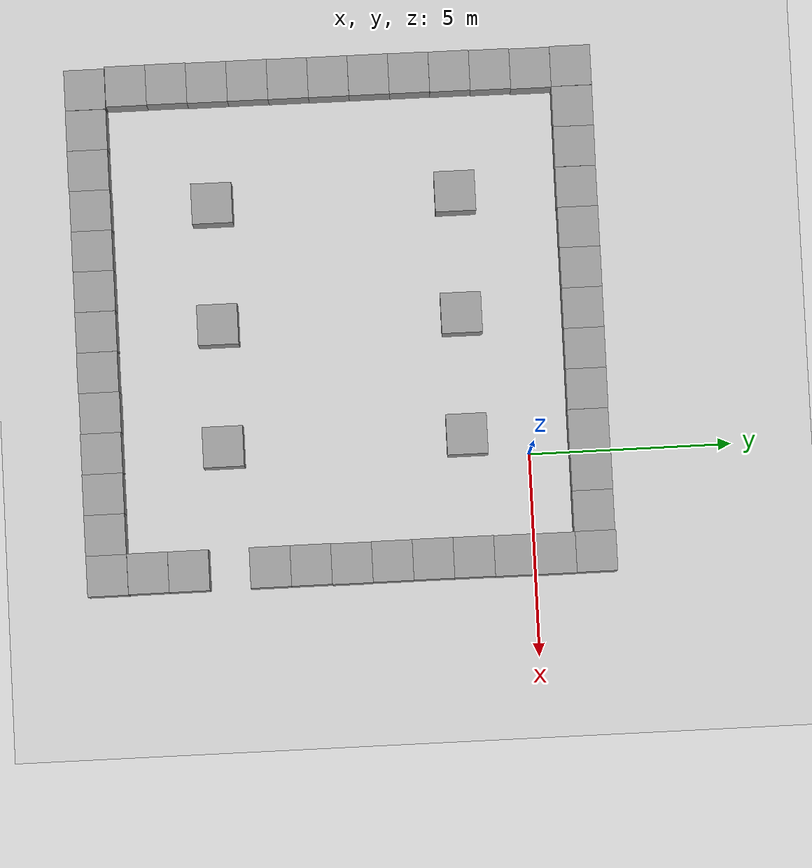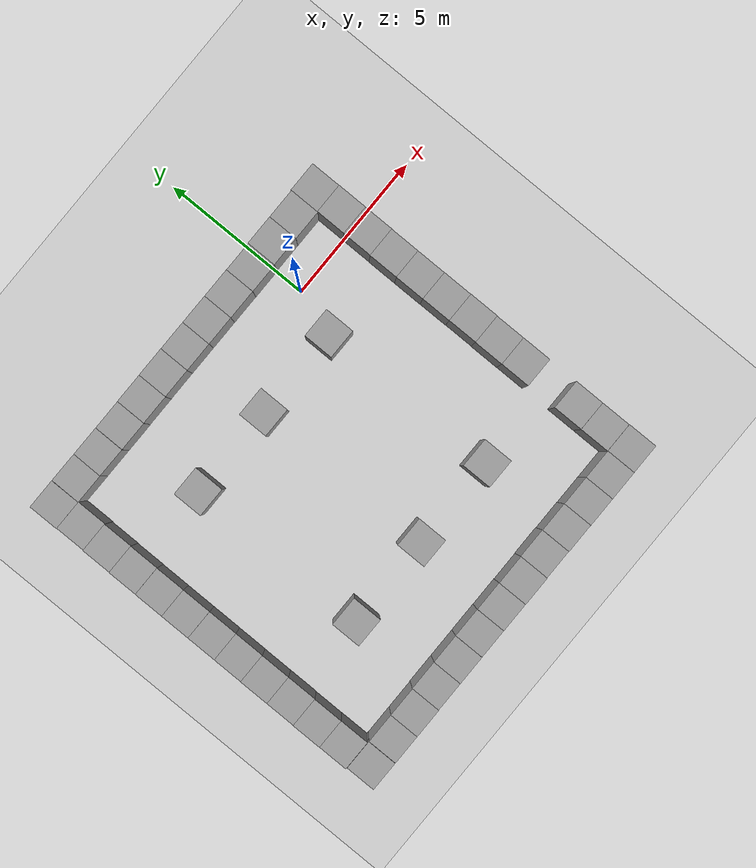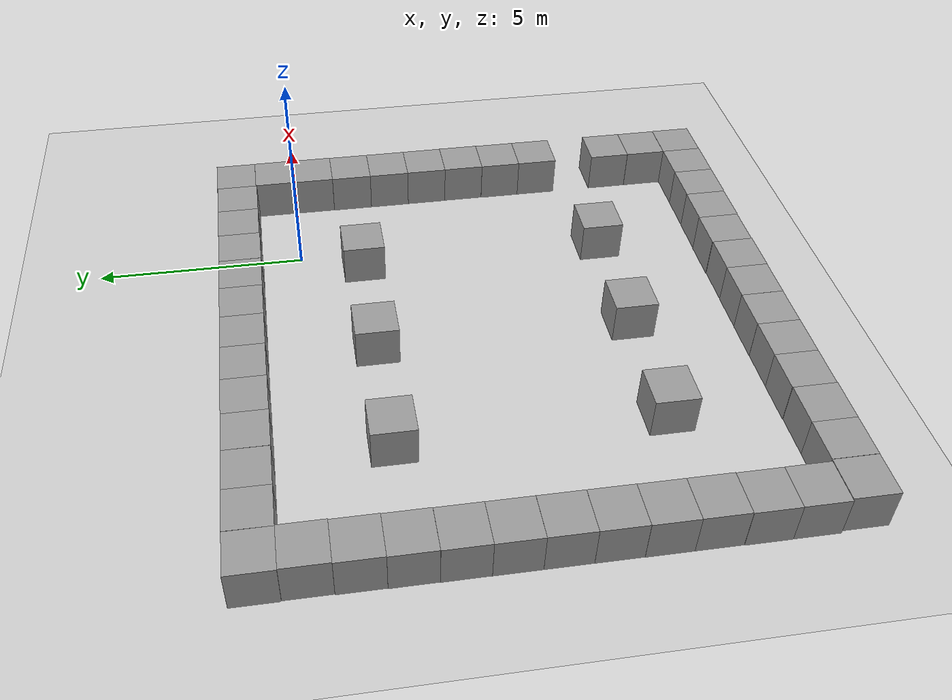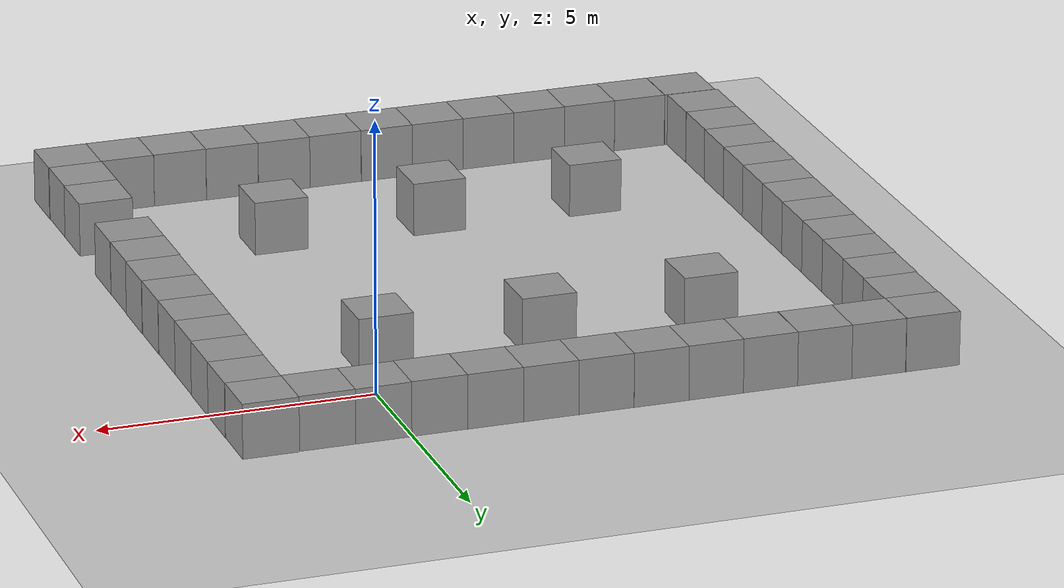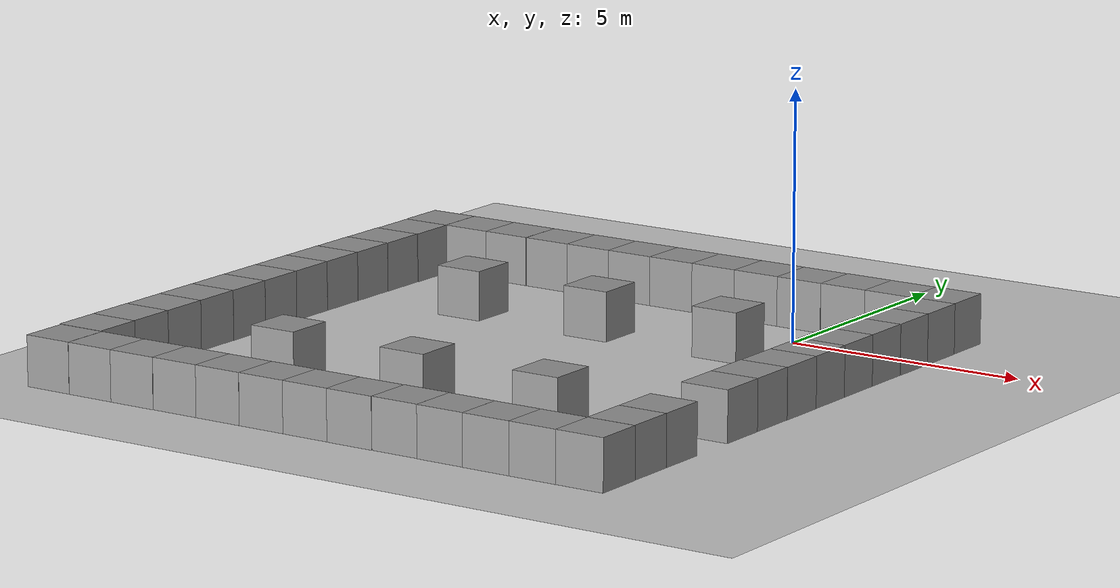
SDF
<sdf version="1.6">
 <world name="default">
  <light name="sun" type="directional">
   <pose>0 0 10 0 -0 0</pose>
   <diffuse>0.8 0.8 0.8 1</diffuse>
   <specular>0.1 0.1 0.1 1</specular>
   <attenuation>
    <range>1000</range>
    <constant>0.9</constant>
    <linear>0.01</linear>
    <quadratic>0.001</quadratic>
   </attenuation>
   <direction>-0.5 0.5 -1</direction>
  </light>
  <model name="ground_plane">
   <static>1</static>
   <link name="link">
    <collision name="collision">
     <geometry><plane><normal>0 0 1</normal><size>100 100</size></plane></geometry>
     <surface><friction><ode><mu>100</mu><mu2>50</mu2></ode></friction></surface>
    </collision>
    <visual name="visual">
     <cast_shadows>0</cast_shadows>
     <geometry><plane><normal>0 0 1</normal><size>100 100</size></plane></geometry>
     <material>
      <script><uri>file://media/materials/scripts/gazebo.material</uri><name>Gazebo/Grey</name></script>
     </material>
    </visual>
   </link>
  </model>
  <gravity>0 0 -9.8</gravity>
  <magnetic_field>6e-06 2.3e-05 -4.2e-05</magnetic_field>
  <atmosphere type="adiabatic"/>
  <physics name="default_physics" default="0" type="ode">
   <max_step_size>0.001</max_step_size>
   <real_time_factor>1</real_time_factor>
   <real_time_update_rate>1000</real_time_update_rate>
  </physics>
  <scene><ambient>0.4 0.4 0.4 1</ambient><background>0.7 0.7 0.7 1</background><shadows>1</shadows></scene>
  <spherical_coordinates>
   <surface_model>EARTH_WGS84</surface_model>
   <latitude_deg>0</latitude_deg>
   <longitude_deg>0</longitude_deg>
   <elevation>0</elevation>
   <heading_deg>0</heading_deg>
  </spherical_coordinates>
  <model name="unit_box_0_3">
   <pose>-0.485013 1.46415 0.499995 0 -9e-06 -0.000435</pose>
   <link name="link">
    <inertial>
     <mass>1</mass>
     <inertia>
      <ixx>0.166667</ixx>
      <ixy>0</ixy>
      <ixz>0</ixz>
      <iyy>0.166667</iyy>
      <iyz>0</iyz>
      <izz>0.166667</izz>
     </inertia>
    </inertial>
    <collision name="collision"><geometry><box><size>1 1 1</size></box></geometry></collision>
    <visual name="visual">
     <geometry><box><size>1 1 1</size></box></geometry>
     <material>
      <script><name>Gazebo/Grey</name><uri>file://media/materials/scripts/gazebo.material</uri></script>
     </material>
    </visual>
   </link>
  </model>
  <model name="unit_box_0_4">
   <pose>0.51501 1.47742 0.5 0 0 -0.000414</pose>
   <link name="link">
    <inertial>
     <mass>1</mass>
     <inertia>
      <ixx>0.166667</ixx>
      <ixy>0</ixy>
      <ixz>0</ixz>
      <iyy>0.166667</iyy>
      <iyz>0</iyz>
      <izz>0.166667</izz>
     </inertia>
    </inertial>
    <collision name="collision"><geometry><box><size>1 1 1</size></box></geometry></collision>
    <visual name="visual">
     <geometry><box><size>1 1 1</size></box></geometry>
     <material>
      <script><name>Gazebo/Grey</name><uri>file://media/materials/scripts/gazebo.material</uri></script>
     </material>
    </visual>
   </link>
  </model>
  <model name="unit_box_0_5">
   <pose>1.51501 1.47529 0.499995 1e-05 -0 -0.000415</pose>
   <link name="link">
    <inertial>
     <mass>1</mass>
     <inertia>
      <ixx>0.166667</ixx>
      <ixy>0</ixy>
      <ixz>0</ixz>
      <iyy>0.166667</iyy>
      <iyz>0</iyz>
      <izz>0.166667</izz>
     </inertia>
    </inertial>
    <collision name="collision"><geometry><box><size>1 1 1</size></box></geometry></collision>
    <visual name="visual">
     <geometry><box><size>1 1 1</size></box></geometry>
     <material>
      <script><name>Gazebo/Grey</name><uri>file://media/materials/scripts/gazebo.material</uri></script>
     </material>
    </visual>
   </link>
  </model>
  <model name="unit_box_0_6">
   <pose>-1.48541 1.46961 0.499995 0 -1e-05 -0.001229</pose>
   <link name="link">
    <inertial>
     <mass>1</mass>
     <inertia>
      <ixx>0.166667</ixx>
      <ixy>0</ixy>
      <ixz>0</ixz>
      <iyy>0.166667</iyy>
      <iyz>0</iyz>
      <izz>0.166667</izz>
     </inertia>
    </inertial>
    <collision name="collision"><geometry><box><size>1 1 1</size></box></geometry></collision>
    <visual name="visual">
     <geometry><box><size>1 1 1</size></box></geometry>
     <material>
      <script><name>Gazebo/Grey</name><uri>file://media/materials/scripts/gazebo.material</uri></script>
     </material>
    </visual>
   </link>
  </model>
  <model name="unit_box_0_7">
   <pose>-2.48543 1.47308 0.499995 -0 1e-05 -0.001287</pose>
   <link name="link">
    <inertial>
     <mass>1</mass>
     <inertia>
      <ixx>0.166667</ixx>
      <ixy>0</ixy>
      <ixz>0</ixz>
      <iyy>0.166667</iyy>
      <iyz>0</iyz>
      <izz>0.166667</izz>
     </inertia>
    </inertial>
    <collision name="collision"><geometry><box><size>1 1 1</size></box></geometry></collision>
    <visual name="visual">
     <geometry><box><size>1 1 1</size></box></geometry>
     <material>
      <script><name>Gazebo/Grey</name><uri>file://media/materials/scripts/gazebo.material</uri></script>
     </material>
    </visual>
   </link>
  </model>
  <model name="unit_box_0_8">
   <pose>2.51507 1.4973 0.499995 -1e-05 -0 -0.000347</pose>
   <link name="link">
    <inertial>
     <mass>1</mass>
     <inertia>
      <ixx>0.166667</ixx>
      <ixy>0</ixy>
      <ixz>0</ixz>
      <iyy>0.166667</iyy>
      <iyz>0</iyz>
      <izz>0.166667</izz>
     </inertia>
    </inertial>
    <collision name="collision"><geometry><box><size>1 1 1</size></box></geometry></collision>
    <visual name="visual">
     <geometry><box><size>1 1 1</size></box></geometry>
     <material>
      <script><name>Gazebo/Grey</name><uri>file://media/materials/scripts/gazebo.material</uri></script>
     </material>
    </visual>
   </link>
  </model>
  <model name="unit_box_0_9">
   <pose>-3.48544 1.47527 0.499995 0 -1e-05 -0.00129</pose>
   <link name="link">
    <inertial>
     <mass>1</mass>
     <inertia>
      <ixx>0.166667</ixx>
      <ixy>0</ixy>
      <ixz>0</ixz>
      <iyy>0.166667</iyy>
      <iyz>0</iyz>
      <izz>0.166667</izz>
     </inertia>
    </inertial>
    <collision name="collision"><geometry><box><size>1 1 1</size></box></geometry></collision>
    <visual name="visual">
     <geometry><box><size>1 1 1</size></box></geometry>
     <material>
      <script><name>Gazebo/Grey</name><uri>file://media/materials/scripts/gazebo.material</uri></script>
     </material>
    </visual>
   </link>
  </model>
  <model name="unit_box_0_10">
   <pose>-4.48545 1.47864 0.499995 1e-05 0 -0.00131</pose>
   <link name="link">
    <inertial>
     <mass>1</mass>
     <inertia>
      <ixx>0.166667</ixx>
      <ixy>0</ixy>
      <ixz>0</ixz>
      <iyy>0.166667</iyy>
      <iyz>0</iyz>
      <izz>0.166667</izz>
     </inertia>
    </inertial>
    <collision name="collision"><geometry><box><size>1 1 1</size></box></geometry></collision>
    <visual name="visual">
     <geometry><box><size>1 1 1</size></box></geometry>
     <material>
      <script><name>Gazebo/Grey</name><uri>file://media/materials/scripts/gazebo.material</uri></script>
     </material>
    </visual>
   </link>
  </model>
  <model name="unit_box_0_11">
   <pose>-5.48546 1.47608 0.499995 0 -1e-05 -0.001312</pose>
   <link name="link">
    <inertial>
     <mass>1</mass>
     <inertia>
      <ixx>0.166667</ixx>
      <ixy>0</ixy>
      <ixz>0</ixz>
      <iyy>0.166667</iyy>
      <iyz>0</iyz>
      <izz>0.166667</izz>
     </inertia>
    </inertial>
    <collision name="collision"><geometry><box><size>1 1 1</size></box></geometry></collision>
    <visual name="visual">
     <geometry><box><size>1 1 1</size></box></geometry>
     <material>
      <script><name>Gazebo/Grey</name><uri>file://media/materials/scripts/gazebo.material</uri></script>
     </material>
    </visual>
   </link>
  </model>
  <model name="unit_box_0_28">
   <pose>2.51081 -6.50287 0.5 0 0 -7e-05</pose>
   <link name="link">
    <inertial>
     <mass>1</mass>
     <inertia>
      <ixx>0.166667</ixx>
      <ixy>0</ixy>
      <ixz>0</ixz>
      <iyy>0.166667</iyy>
      <iyz>0</iyz>
      <izz>0.166667</izz>
     </inertia>
    </inertial>
    <collision name="collision"><geometry><box><size>1 1 1</size></box></geometry></collision>
    <visual name="visual">
     <geometry><box><size>1 1 1</size></box></geometry>
     <material>
      <script><name>Gazebo/Grey</name><uri>file://media/materials/scripts/gazebo.material</uri></script>
     </material>
    </visual>
   </link>
  </model>
  <model name="unit_box_0_29">
   <pose>2.50829 -5.50284 0.499995 0 1e-05 -0.000143</pose>
   <link name="link">
    <inertial>
     <mass>1</mass>
     <inertia>
      <ixx>0.166667</ixx>
      <ixy>0</ixy>
      <ixz>0</ixz>
      <iyy>0.166667</iyy>
      <iyz>0</iyz>
      <izz>0.166667</izz>
     </inertia>
    </inertial>
    <collision name="collision"><geometry><box><size>1 1 1</size></box></geometry></collision>
    <visual name="visual">
     <geometry><box><size>1 1 1</size></box></geometry>
     <material>
      <script><name>Gazebo/Grey</name><uri>file://media/materials/scripts/gazebo.material</uri></script>
     </material>
    </visual>
   </link>
  </model>
  <model name="unit_box_0_30">
   <pose>2.5175 -4.50282 0.5 0 0 -0.000171</pose>
   <link name="link">
    <inertial>
     <mass>1</mass>
     <inertia>
      <ixx>0.166667</ixx>
      <ixy>0</ixy>
      <ixz>0</ixz>
      <iyy>0.166667</iyy>
      <iyz>0</iyz>
      <izz>0.166667</izz>
     </inertia>
    </inertial>
    <collision name="collision"><geometry><box><size>1 1 1</size></box></geometry></collision>
    <visual name="visual">
     <geometry><box><size>1 1 1</size></box></geometry>
     <material>
      <script><name>Gazebo/Grey</name><uri>file://media/materials/scripts/gazebo.material</uri></script>
     </material>
    </visual>
   </link>
  </model>
  <model name="unit_box_0_31">
   <pose>2.51174 -3.50282 0.499995 0 -1e-05 -0.000172</pose>
   <link name="link">
    <inertial>
     <mass>1</mass>
     <inertia>
      <ixx>0.166667</ixx>
      <ixy>0</ixy>
      <ixz>0</ixz>
      <iyy>0.166667</iyy>
      <iyz>0</iyz>
      <izz>0.166667</izz>
     </inertia>
    </inertial>
    <collision name="collision"><geometry><box><size>1 1 1</size></box></geometry></collision>
    <visual name="visual">
     <geometry><box><size>1 1 1</size></box></geometry>
     <material>
      <script><name>Gazebo/Grey</name><uri>file://media/materials/scripts/gazebo.material</uri></script>
     </material>
    </visual>
   </link>
  </model>
  <model name="unit_box_0_32">
   <pose>2.50817 -2.50281 0.499995 0 -1e-05 -0.000172</pose>
   <link name="link">
    <inertial>
     <mass>1</mass>
     <inertia>
      <ixx>0.166667</ixx>
      <ixy>0</ixy>
      <ixz>0</ixz>
      <iyy>0.166667</iyy>
      <iyz>0</iyz>
      <izz>0.166667</izz>
     </inertia>
    </inertial>
    <collision name="collision"><geometry><box><size>1 1 1</size></box></geometry></collision>
    <visual name="visual">
     <geometry><box><size>1 1 1</size></box></geometry>
     <material>
      <script><name>Gazebo/Grey</name><uri>file://media/materials/scripts/gazebo.material</uri></script>
     </material>
    </visual>
   </link>
  </model>
  <model name="unit_box_0_34">
   <pose>2.50946 -1.50281 0.499995 1e-05 0 -0.000174</pose>
   <link name="link">
    <inertial>
     <mass>1</mass>
     <inertia>
      <ixx>0.166667</ixx>
      <ixy>0</ixy>
      <ixz>0</ixz>
      <iyy>0.166667</iyy>
      <iyz>0</iyz>
      <izz>0.166667</izz>
     </inertia>
    </inertial>
    <collision name="collision"><geometry><box><size>1 1 1</size></box></geometry></collision>
    <visual name="visual">
     <geometry><box><size>1 1 1</size></box></geometry>
     <material>
      <script><name>Gazebo/Grey</name><uri>file://media/materials/scripts/gazebo.material</uri></script>
     </material>
    </visual>
   </link>
  </model>
  <model name="unit_box_0_35">
   <pose>2.51729 -0.50279 0.499995 -1e-05 0 -0.000177</pose>
   <link name="link">
    <inertial>
     <mass>1</mass>
     <inertia>
      <ixx>0.166667</ixx>
      <ixy>0</ixy>
      <ixz>0</ixz>
      <iyy>0.166667</iyy>
      <iyz>0</iyz>
      <izz>0.166667</izz>
     </inertia>
    </inertial>
    <collision name="collision"><geometry><box><size>1 1 1</size></box></geometry></collision>
    <visual name="visual">
     <geometry><box><size>1 1 1</size></box></geometry>
     <material>
      <script><name>Gazebo/Grey</name><uri>file://media/materials/scripts/gazebo.material</uri></script>
     </material>
    </visual>
   </link>
  </model>
  <model name="unit_box_0_36">
   <pose>2.52058 0.497209 0.499995 1e-05 -0 -0.000193</pose>
   <link name="link">
    <inertial>
     <mass>1</mass>
     <inertia>
      <ixx>0.166667</ixx>
      <ixy>0</ixy>
      <ixz>0</ixz>
      <iyy>0.166667</iyy>
      <iyz>0</iyz>
      <izz>0.166667</izz>
     </inertia>
    </inertial>
    <collision name="collision"><geometry><box><size>1 1 1</size></box></geometry></collision>
    <visual name="visual">
     <geometry><box><size>1 1 1</size></box></geometry>
     <material>
      <script><name>Gazebo/Grey</name><uri>file://media/materials/scripts/gazebo.material</uri></script>
     </material>
    </visual>
   </link>
  </model>
  <model name="unit_box_0">
   <pose>-0.515201 -1.52723 0.499995 1e-05 -0 0</pose>
   <link name="link">
    <inertial>
     <mass>1</mass>
     <inertia>
      <ixx>0.166667</ixx>
      <ixy>0</ixy>
      <ixz>0</ixz>
      <iyy>0.166667</iyy>
      <iyz>0</iyz>
      <izz>0.166667</izz>
     </inertia>
    </inertial>
    <collision name="collision"><geometry><box><size>1 1 1</size></box></geometry></collision>
    <visual name="visual">
     <geometry><box><size>1 1 1</size></box></geometry>
     <material>
      <script><name>Gazebo/Grey</name><uri>file://media/materials/scripts/gazebo.material</uri></script>
     </material>
    </visual>
   </link>
  </model>
  <model name="unit_box_2">
   <pose>-0.495698 -7.52249 0.499995 -0 -1e-05 0.000151</pose>
   <link name="link">
    <inertial>
     <mass>1</mass>
     <inertia>
      <ixx>0.166667</ixx>
      <ixy>0</ixy>
      <ixz>0</ixz>
      <iyy>0.166667</iyy>
      <iyz>0</iyz>
      <izz>0.166667</izz>
     </inertia>
    </inertial>
    <collision name="collision"><geometry><box><size>1 1 1</size></box></geometry></collision>
    <visual name="visual">
     <geometry><box><size>1 1 1</size></box></geometry>
     <material>
      <script><name>Gazebo/Grey</name><uri>file://media/materials/scripts/gazebo.material</uri></script>
     </material>
    </visual>
   </link>
  </model>
  <model name="unit_box_4">
   <pose>-1.47392 -10.5015 0.499995 -1e-05 -0 0.003189</pose>
   <link name="link">
    <inertial>
     <mass>1</mass>
     <inertia>
      <ixx>0.166667</ixx>
      <ixy>0</ixy>
      <ixz>0</ixz>
      <iyy>0.166667</iyy>
      <iyz>0</iyz>
      <izz>0.166667</izz>
     </inertia>
    </inertial>
    <collision name="collision"><geometry><box><size>1 1 1</size></box></geometry></collision>
    <visual name="visual">
     <geometry><box><size>1 1 1</size></box></geometry>
     <material>
      <script><name>Gazebo/Grey</name><uri>file://media/materials/scripts/gazebo.material</uri></script>
     </material>
    </visual>
   </link>
  </model>
  <model name="unit_box_5_0">
   <pose>-0.473783 -10.5096 0.499995 -1e-05 -0 0.003101</pose>
   <link name="link">
    <inertial>
     <mass>1</mass>
     <inertia>
      <ixx>0.166667</ixx>
      <ixy>0</ixy>
      <ixz>0</ixz>
      <iyy>0.166667</iyy>
      <iyz>0</iyz>
      <izz>0.166667</izz>
     </inertia>
    </inertial>
    <collision name="collision"><geometry><box><size>1 1 1</size></box></geometry></collision>
    <visual name="visual">
     <geometry><box><size>1 1 1</size></box></geometry>
     <material>
      <script><name>Gazebo/Grey</name><uri>file://media/materials/scripts/gazebo.material</uri></script>
     </material>
    </visual>
   </link>
  </model>
  <model name="unit_box_5_1">
   <pose>0.526451 -10.5137 0.499995 0 -1e-05 0.003181</pose>
   <link name="link">
    <inertial>
     <mass>1</mass>
     <inertia>
      <ixx>0.166667</ixx>
      <ixy>0</ixy>
      <ixz>0</ixz>
      <iyy>0.166667</iyy>
      <iyz>0</iyz>
      <izz>0.166667</izz>
     </inertia>
    </inertial>
    <collision name="collision"><geometry><box><size>1 1 1</size></box></geometry></collision>
    <visual name="visual">
     <geometry><box><size>1 1 1</size></box></geometry>
     <material>
      <script><name>Gazebo/Grey</name><uri>file://media/materials/scripts/gazebo.material</uri></script>
     </material>
    </visual>
   </link>
  </model>
  <model name="unit_box_5_2">
   <pose>1.52651 -10.5118 0.499995 0 1e-05 0.003169</pose>
   <link name="link">
    <inertial>
     <mass>1</mass>
     <inertia>
      <ixx>0.166667</ixx>
      <ixy>0</ixy>
      <ixz>0</ixz>
      <iyy>0.166667</iyy>
      <iyz>0</iyz>
      <izz>0.166667</izz>
     </inertia>
    </inertial>
    <collision name="collision"><geometry><box><size>1 1 1</size></box></geometry></collision>
    <visual name="visual">
     <geometry><box><size>1 1 1</size></box></geometry>
     <material>
      <script><name>Gazebo/Grey</name><uri>file://media/materials/scripts/gazebo.material</uri></script>
     </material>
    </visual>
   </link>
  </model>
  <model name="unit_box_5_3">
   <pose>2.514 -8.50356 0.499995 -0 1e-05 0.001297</pose>
   <link name="link">
    <inertial>
     <mass>1</mass>
     <inertia>
      <ixx>0.166667</ixx>
      <ixy>0</ixy>
      <ixz>0</ixz>
      <iyy>0.166667</iyy>
      <iyz>0</iyz>
      <izz>0.166667</izz>
     </inertia>
    </inertial>
    <collision name="collision"><geometry><box><size>1 1 1</size></box></geometry></collision>
    <visual name="visual">
     <geometry><box><size>1 1 1</size></box></geometry>
     <material>
      <script><name>Gazebo/Grey</name><uri>file://media/materials/scripts/gazebo.material</uri></script>
     </material>
    </visual>
   </link>
  </model>
  <model name="unit_box_5_4">
   <pose>-2.47388 -10.5161 0.499995 -1e-05 -0 0.003189</pose>
   <link name="link">
    <inertial>
     <mass>1</mass>
     <inertia>
      <ixx>0.166667</ixx>
      <ixy>0</ixy>
      <ixz>0</ixz>
      <iyy>0.166667</iyy>
      <iyz>0</iyz>
      <izz>0.166667</izz>
     </inertia>
    </inertial>
    <collision name="collision"><geometry><box><size>1 1 1</size></box></geometry></collision>
    <visual name="visual">
     <geometry><box><size>1 1 1</size></box></geometry>
     <material>
      <script><name>Gazebo/Grey</name><uri>file://media/materials/scripts/gazebo.material</uri></script>
     </material>
    </visual>
   </link>
  </model>
  <model name="unit_box_5_5">
   <pose>2.51461 -9.50427 0.499995 1e-05 -0 0.002689</pose>
   <link name="link">
    <inertial>
     <mass>1</mass>
     <inertia>
      <ixx>0.166667</ixx>
      <ixy>0</ixy>
      <ixz>0</ixz>
      <iyy>0.166667</iyy>
      <iyz>0</iyz>
      <izz>0.166667</izz>
     </inertia>
    </inertial>
    <collision name="collision"><geometry><box><size>1 1 1</size></box></geometry></collision>
    <visual name="visual">
     <geometry><box><size>1 1 1</size></box></geometry>
     <material>
      <script><name>Gazebo/Grey</name><uri>file://media/materials/scripts/gazebo.material</uri></script>
     </material>
    </visual>
   </link>
  </model>
  <model name="unit_box_5_6">
   <pose>2.52662 -10.5055 0.499995 0 -1e-05 0.003363</pose>
   <link name="link">
    <inertial>
     <mass>1</mass>
     <inertia>
      <ixx>0.166667</ixx>
      <ixy>0</ixy>
      <ixz>0</ixz>
      <iyy>0.166667</iyy>
      <iyz>0</iyz>
      <izz>0.166667</izz>
     </inertia>
    </inertial>
    <collision name="collision"><geometry><box><size>1 1 1</size></box></geometry></collision>
    <visual name="visual">
     <geometry><box><size>1 1 1</size></box></geometry>
     <material>
      <script><name>Gazebo/Grey</name><uri>file://media/materials/scripts/gazebo.material</uri></script>
     </material>
    </visual>
   </link>
  </model>
  <model name="unit_box_5_7">
   <pose>-6.48558 1.47192 0.499995 -1e-05 -0 -0.001453</pose>
   <link name="link">
    <inertial>
     <mass>1</mass>
     <inertia>
      <ixx>0.166667</ixx>
      <ixy>0</ixy>
      <ixz>0</ixz>
      <iyy>0.166667</iyy>
      <iyz>0</iyz>
      <izz>0.166667</izz>
     </inertia>
    </inertial>
    <collision name="collision"><geometry><box><size>1 1 1</size></box></geometry></collision>
    <visual name="visual">
     <geometry><box><size>1 1 1</size></box></geometry>
     <material>
      <script><name>Gazebo/Grey</name><uri>file://media/materials/scripts/gazebo.material</uri></script>
     </material>
    </visual>
   </link>
  </model>
  <model name="unit_box_5_8">
   <pose>-7.48807 1.476 0.499995 1e-05 -0 -0.006394</pose>
   <link name="link">
    <inertial>
     <mass>1</mass>
     <inertia>
      <ixx>0.166667</ixx>
      <ixy>0</ixy>
      <ixz>0</ixz>
      <iyy>0.166667</iyy>
      <iyz>0</iyz>
      <izz>0.166667</izz>
     </inertia>
    </inertial>
    <collision name="collision"><geometry><box><size>1 1 1</size></box></geometry></collision>
    <visual name="visual">
     <geometry><box><size>1 1 1</size></box></geometry>
     <material>
      <script><name>Gazebo/Grey</name><uri>file://media/materials/scripts/gazebo.material</uri></script>
     </material>
    </visual>
   </link>
  </model>
  <model name="unit_box_5_9">
   <pose>-8.48807 1.48038 0.499995 1e-05 -0 -0.006392</pose>
   <link name="link">
    <inertial>
     <mass>1</mass>
     <inertia>
      <ixx>0.166667</ixx>
      <ixy>0</ixy>
      <ixz>0</ixz>
      <iyy>0.166667</iyy>
      <iyz>0</iyz>
      <izz>0.166667</izz>
     </inertia>
    </inertial>
    <collision name="collision"><geometry><box><size>1 1 1</size></box></geometry></collision>
    <visual name="visual">
     <geometry><box><size>1 1 1</size></box></geometry>
     <material>
      <script><name>Gazebo/Grey</name><uri>file://media/materials/scripts/gazebo.material</uri></script>
     </material>
    </visual>
   </link>
  </model>
  <model name="unit_box_5_10">
   <pose>-9.49113 1.48362 0.5 0 0 -0.000288</pose>
   <link name="link">
    <inertial>
     <mass>1</mass>
     <inertia>
      <ixx>0.166667</ixx>
      <ixy>0</ixy>
      <ixz>0</ixz>
      <iyy>0.166667</iyy>
      <iyz>0</iyz>
      <izz>0.166667</izz>
     </inertia>
    </inertial>
    <collision name="collision"><geometry><box><size>1 1 1</size></box></geometry></collision>
    <visual name="visual">
     <geometry><box><size>1 1 1</size></box></geometry>
     <material>
      <script><name>Gazebo/Grey</name><uri>file://media/materials/scripts/gazebo.material</uri></script>
     </material>
    </visual>
   </link>
  </model>
  <model name="unit_box_5_11">
   <pose>-3.47406 -10.5125 0.499995 0 1e-05 0.0031</pose>
   <link name="link">
    <inertial>
     <mass>1</mass>
     <inertia>
      <ixx>0.166667</ixx>
      <ixy>0</ixy>
      <ixz>0</ixz>
      <iyy>0.166667</iyy>
      <iyz>0</iyz>
      <izz>0.166667</izz>
     </inertia>
    </inertial>
    <collision name="collision"><geometry><box><size>1 1 1</size></box></geometry></collision>
    <visual name="visual">
     <geometry><box><size>1 1 1</size></box></geometry>
     <material>
      <script><name>Gazebo/Grey</name><uri>file://media/materials/scripts/gazebo.material</uri></script>
     </material>
    </visual>
   </link>
  </model>
  <model name="unit_box_5_12">
   <pose>-4.47461 -10.5113 0.499995 1e-05 0 0.002137</pose>
   <link name="link">
    <inertial>
     <mass>1</mass>
     <inertia>
      <ixx>0.166667</ixx>
      <ixy>0</ixy>
      <ixz>0</ixz>
      <iyy>0.166667</iyy>
      <iyz>0</iyz>
      <izz>0.166667</izz>
     </inertia>
    </inertial>
    <collision name="collision"><geometry><box><size>1 1 1</size></box></geometry></collision>
    <visual name="visual">
     <geometry><box><size>1 1 1</size></box></geometry>
     <material>
      <script><name>Gazebo/Grey</name><uri>file://media/materials/scripts/gazebo.material</uri></script>
     </material>
    </visual>
   </link>
  </model>
  <model name="unit_box_5_13">
   <pose>-5.4749 -10.5159 0.499995 0 1e-05 0.001544</pose>
   <link name="link">
    <inertial>
     <mass>1</mass>
     <inertia>
      <ixx>0.166667</ixx>
      <ixy>0</ixy>
      <ixz>0</ixz>
      <iyy>0.166667</iyy>
      <iyz>0</iyz>
      <izz>0.166667</izz>
     </inertia>
    </inertial>
    <collision name="collision"><geometry><box><size>1 1 1</size></box></geometry></collision>
    <visual name="visual">
     <geometry><box><size>1 1 1</size></box></geometry>
     <material>
      <script><name>Gazebo/Grey</name><uri>file://media/materials/scripts/gazebo.material</uri></script>
     </material>
    </visual>
   </link>
  </model>
  <model name="unit_box_5_14">
   <pose>-6.47494 -10.5167 0.499995 -1e-05 -0 0.00147</pose>
   <link name="link">
    <inertial>
     <mass>1</mass>
     <inertia>
      <ixx>0.166667</ixx>
      <ixy>0</ixy>
      <ixz>0</ixz>
      <iyy>0.166667</iyy>
      <iyz>0</iyz>
      <izz>0.166667</izz>
     </inertia>
    </inertial>
    <collision name="collision"><geometry><box><size>1 1 1</size></box></geometry></collision>
    <visual name="visual">
     <geometry><box><size>1 1 1</size></box></geometry>
     <material>
      <script><name>Gazebo/Grey</name><uri>file://media/materials/scripts/gazebo.material</uri></script>
     </material>
    </visual>
   </link>
  </model>
  <model name="unit_box_5_15">
   <pose>-7.47494 -10.5285 0.499995 1e-05 -0 0.001469</pose>
   <link name="link">
    <inertial>
     <mass>1</mass>
     <inertia>
      <ixx>0.166667</ixx>
      <ixy>0</ixy>
      <ixz>0</ixz>
      <iyy>0.166667</iyy>
      <iyz>0</iyz>
      <izz>0.166667</izz>
     </inertia>
    </inertial>
    <collision name="collision"><geometry><box><size>1 1 1</size></box></geometry></collision>
    <visual name="visual">
     <geometry><box><size>1 1 1</size></box></geometry>
     <material>
      <script><name>Gazebo/Grey</name><uri>file://media/materials/scripts/gazebo.material</uri></script>
     </material>
    </visual>
   </link>
  </model>
  <model name="unit_box_5_16">
   <pose>-8.47495 -10.5288 0.499995 1e-05 -0 0.001469</pose>
   <link name="link">
    <inertial>
     <mass>1</mass>
     <inertia>
      <ixx>0.166667</ixx>
      <ixy>0</ixy>
      <ixz>0</ixz>
      <iyy>0.166667</iyy>
      <iyz>0</iyz>
      <izz>0.166667</izz>
     </inertia>
    </inertial>
    <collision name="collision"><geometry><box><size>1 1 1</size></box></geometry></collision>
    <visual name="visual">
     <geometry><box><size>1 1 1</size></box></geometry>
     <material>
      <script><name>Gazebo/Grey</name><uri>file://media/materials/scripts/gazebo.material</uri></script>
     </material>
    </visual>
   </link>
  </model>
  <model name="unit_box_5_17">
   <pose>-9.47979 -10.5268 0.499995 0 1e-05 0</pose>
   <link name="link">
    <inertial>
     <mass>1</mass>
     <inertia>
      <ixx>0.166667</ixx>
      <ixy>0</ixy>
      <ixz>0</ixz>
      <iyy>0.166667</iyy>
      <iyz>0</iyz>
      <izz>0.166667</izz>
     </inertia>
    </inertial>
    <collision name="collision"><geometry><box><size>1 1 1</size></box></geometry></collision>
    <visual name="visual">
     <geometry><box><size>1 1 1</size></box></geometry>
     <material>
      <script><name>Gazebo/Grey</name><uri>file://media/materials/scripts/gazebo.material</uri></script>
     </material>
    </visual>
   </link>
  </model>
  <model name="unit_box_5_18">
   <pose>-9.52678 -9.51802 0.499995 0 -1e-05 -0.000363</pose>
   <link name="link">
    <inertial>
     <mass>1</mass>
     <inertia>
      <ixx>0.166667</ixx>
      <ixy>0</ixy>
      <ixz>0</ixz>
      <iyy>0.166667</iyy>
      <iyz>0</iyz>
      <izz>0.166667</izz>
     </inertia>
    </inertial>
    <collision name="collision"><geometry><box><size>1 1 1</size></box></geometry></collision>
    <visual name="visual">
     <geometry><box><size>1 1 1</size></box></geometry>
     <material>
      <script><name>Gazebo/Grey</name><uri>file://media/materials/scripts/gazebo.material</uri></script>
     </material>
    </visual>
   </link>
  </model>
  <model name="unit_box_5_19">
   <pose>-9.53051 -8.51802 0.499995 9e-06 -0 -0.000364</pose>
   <link name="link">
    <inertial>
     <mass>1</mass>
     <inertia>
      <ixx>0.166667</ixx>
      <ixy>0</ixy>
      <ixz>0</ixz>
      <iyy>0.166667</iyy>
      <iyz>0</iyz>
      <izz>0.166667</izz>
     </inertia>
    </inertial>
    <collision name="collision"><geometry><box><size>1 1 1</size></box></geometry></collision>
    <visual name="visual">
     <geometry><box><size>1 1 1</size></box></geometry>
     <material>
      <script><name>Gazebo/Grey</name><uri>file://media/materials/scripts/gazebo.material</uri></script>
     </material>
    </visual>
   </link>
  </model>
  <model name="unit_box_5_20">
   <pose>-9.52037 -7.51801 0.499995 -9e-06 -0 -0.000364</pose>
   <link name="link">
    <inertial>
     <mass>1</mass>
     <inertia>
      <ixx>0.166667</ixx>
      <ixy>0</ixy>
      <ixz>0</ixz>
      <iyy>0.166667</iyy>
      <iyz>0</iyz>
      <izz>0.166667</izz>
     </inertia>
    </inertial>
    <collision name="collision"><geometry><box><size>1 1 1</size></box></geometry></collision>
    <visual name="visual">
     <geometry><box><size>1 1 1</size></box></geometry>
     <material>
      <script><name>Gazebo/Grey</name><uri>file://media/materials/scripts/gazebo.material</uri></script>
     </material>
    </visual>
   </link>
  </model>
  <model name="unit_box_5_21">
   <pose>-9.52082 -6.51799 0.499995 -1e-05 0 -0.000369</pose>
   <link name="link">
    <inertial>
     <mass>1</mass>
     <inertia>
      <ixx>0.166667</ixx>
      <ixy>0</ixy>
      <ixz>0</ixz>
      <iyy>0.166667</iyy>
      <iyz>0</iyz>
      <izz>0.166667</izz>
     </inertia>
    </inertial>
    <collision name="collision"><geometry><box><size>1 1 1</size></box></geometry></collision>
    <visual name="visual">
     <geometry><box><size>1 1 1</size></box></geometry>
     <material>
      <script><name>Gazebo/Grey</name><uri>file://media/materials/scripts/gazebo.material</uri></script>
     </material>
    </visual>
   </link>
  </model>
  <model name="unit_box_5_22">
   <pose>-9.51495 -5.51798 0.499995 -1e-05 -0 -0.000376</pose>
   <link name="link">
    <inertial>
     <mass>1</mass>
     <inertia>
      <ixx>0.166667</ixx>
      <ixy>0</ixy>
      <ixz>0</ixz>
      <iyy>0.166667</iyy>
      <iyz>0</iyz>
      <izz>0.166667</izz>
     </inertia>
    </inertial>
    <collision name="collision"><geometry><box><size>1 1 1</size></box></geometry></collision>
    <visual name="visual">
     <geometry><box><size>1 1 1</size></box></geometry>
     <material>
      <script><name>Gazebo/Grey</name><uri>file://media/materials/scripts/gazebo.material</uri></script>
     </material>
    </visual>
   </link>
  </model>
  <model name="unit_box_5_23">
   <pose>-9.5121 -4.51792 0.499995 -0 1e-05 -0.000355</pose>
   <link name="link">
    <inertial>
     <mass>1</mass>
     <inertia>
      <ixx>0.166667</ixx>
      <ixy>0</ixy>
      <ixz>0</ixz>
      <iyy>0.166667</iyy>
      <iyz>0</iyz>
      <izz>0.166667</izz>
     </inertia>
    </inertial>
    <collision name="collision"><geometry><box><size>1 1 1</size></box></geometry></collision>
    <visual name="visual">
     <geometry><box><size>1 1 1</size></box></geometry>
     <material>
      <script><name>Gazebo/Grey</name><uri>file://media/materials/scripts/gazebo.material</uri></script>
     </material>
    </visual>
   </link>
  </model>
  <model name="unit_box_5_24">
   <pose>-9.51118 -3.51754 0.499995 0 1e-05 0.000419</pose>
   <link name="link">
    <inertial>
     <mass>1</mass>
     <inertia>
      <ixx>0.166667</ixx>
      <ixy>0</ixy>
      <ixz>0</ixz>
      <iyy>0.166667</iyy>
      <iyz>0</iyz>
      <izz>0.166667</izz>
     </inertia>
    </inertial>
    <collision name="collision"><geometry><box><size>1 1 1</size></box></geometry></collision>
    <visual name="visual">
     <geometry><box><size>1 1 1</size></box></geometry>
     <material>
      <script><name>Gazebo/Grey</name><uri>file://media/materials/scripts/gazebo.material</uri></script>
     </material>
    </visual>
   </link>
  </model>
  <model name="unit_box_5_25">
   <pose>-9.50814 -2.51753 0.499995 0 -1e-05 0.000418</pose>
   <link name="link">
    <inertial>
     <mass>1</mass>
     <inertia>
      <ixx>0.166667</ixx>
      <ixy>0</ixy>
      <ixz>0</ixz>
      <iyy>0.166667</iyy>
      <iyz>0</iyz>
      <izz>0.166667</izz>
     </inertia>
    </inertial>
    <collision name="collision"><geometry><box><size>1 1 1</size></box></geometry></collision>
    <visual name="visual">
     <geometry><box><size>1 1 1</size></box></geometry>
     <material>
      <script><name>Gazebo/Grey</name><uri>file://media/materials/scripts/gazebo.material</uri></script>
     </material>
    </visual>
   </link>
  </model>
  <model name="unit_box_5_26">
   <pose>-9.50202 -1.5168 0.499995 1e-05 -0 0.000481</pose>
   <link name="link">
    <inertial>
     <mass>1</mass>
     <inertia>
      <ixx>0.166667</ixx>
      <ixy>0</ixy>
      <ixz>0</ixz>
      <iyy>0.166667</iyy>
      <iyz>0</iyz>
      <izz>0.166667</izz>
     </inertia>
    </inertial>
    <collision name="collision"><geometry><box><size>1 1 1</size></box></geometry></collision>
    <visual name="visual">
     <geometry><box><size>1 1 1</size></box></geometry>
     <material>
      <script><name>Gazebo/Grey</name><uri>file://media/materials/scripts/gazebo.material</uri></script>
     </material>
    </visual>
   </link>
  </model>
  <model name="unit_box_5_27">
   <pose>-9.49201 -0.516775 0.499995 9e-06 -0 0.000469</pose>
   <link name="link">
    <inertial>
     <mass>1</mass>
     <inertia>
      <ixx>0.166667</ixx>
      <ixy>0</ixy>
      <ixz>0</ixz>
      <iyy>0.166667</iyy>
      <iyz>0</iyz>
      <izz>0.166667</izz>
     </inertia>
    </inertial>
    <collision name="collision"><geometry><box><size>1 1 1</size></box></geometry></collision>
    <visual name="visual">
     <geometry><box><size>1 1 1</size></box></geometry>
     <material>
      <script><name>Gazebo/Grey</name><uri>file://media/materials/scripts/gazebo.material</uri></script>
     </material>
    </visual>
   </link>
  </model>
  <model name="unit_box_5_28">
   <pose>-9.47584 0.483344 0.499995 -1e-05 -0 0.000262</pose>
   <link name="link">
    <inertial>
     <mass>1</mass>
     <inertia>
      <ixx>0.166667</ixx>
      <ixy>0</ixy>
      <ixz>0</ixz>
      <iyy>0.166667</iyy>
      <iyz>0</iyz>
      <izz>0.166667</izz>
     </inertia>
    </inertial>
    <collision name="collision"><geometry><box><size>1 1 1</size></box></geometry></collision>
    <visual name="visual">
     <geometry><box><size>1 1 1</size></box></geometry>
     <material>
      <script><name>Gazebo/Grey</name><uri>file://media/materials/scripts/gazebo.material</uri></script>
     </material>
    </visual>
   </link>
  </model>
  <model name="unit_box_5_29">
   <pose>-3.50909 -1.51524 0.499995 -1e-05 0 0</pose>
   <link name="link">
    <inertial>
     <mass>1</mass>
     <inertia>
      <ixx>0.166667</ixx>
      <ixy>0</ixy>
      <ixz>0</ixz>
      <iyy>0.166667</iyy>
      <iyz>0</iyz>
      <izz>0.166667</izz>
     </inertia>
    </inertial>
    <collision name="collision"><geometry><box><size>1 1 1</size></box></geometry></collision>
    <visual name="visual">
     <geometry><box><size>1 1 1</size></box></geometry>
     <material>
      <script><name>Gazebo/Grey</name><uri>file://media/materials/scripts/gazebo.material</uri></script>
     </material>
    </visual>
   </link>
  </model>
  <model name="unit_box_5_30">
   <pose>-6.52072 -1.5247 0.499995 0 1e-05 0</pose>
   <link name="link">
    <inertial>
     <mass>1</mass>
     <inertia>
      <ixx>0.166667</ixx>
      <ixy>0</ixy>
      <ixz>0</ixz>
      <iyy>0.166667</iyy>
      <iyz>0</iyz>
      <izz>0.166667</izz>
     </inertia>
    </inertial>
    <collision name="collision"><geometry><box><size>1 1 1</size></box></geometry></collision>
    <visual name="visual">
     <geometry><box><size>1 1 1</size></box></geometry>
     <material>
      <script><name>Gazebo/Grey</name><uri>file://media/materials/scripts/gazebo.material</uri></script>
     </material>
    </visual>
   </link>
  </model>
  <model name="unit_box_5_32">
   <pose>-3.50985 -7.51864 0.499995 0 1e-05 0</pose>
   <link name="link">
    <inertial>
     <mass>1</mass>
     <inertia>
      <ixx>0.166667</ixx>
      <ixy>0</ixy>
      <ixz>0</ixz>
      <iyy>0.166667</iyy>
      <iyz>0</iyz>
      <izz>0.166667</izz>
     </inertia>
    </inertial>
    <collision name="collision"><geometry><box><size>1 1 1</size></box></geometry></collision>
    <visual name="visual">
     <geometry><box><size>1 1 1</size></box></geometry>
     <material>
      <script><name>Gazebo/Grey</name><uri>file://media/materials/scripts/gazebo.material</uri></script>
     </material>
    </visual>
   </link>
  </model>
  <model name="unit_box_5_34">
   <pose>-6.51436 -7.52584 0.499995 0 -1e-05 0</pose>
   <link name="link">
    <inertial>
     <mass>1</mass>
     <inertia>
      <ixx>0.166667</ixx>
      <ixy>0</ixy>
      <ixz>0</ixz>
      <iyy>0.166667</iyy>
      <iyz>0</iyz>
      <izz>0.166667</izz>
     </inertia>
    </inertial>
    <collision name="collision"><geometry><box><size>1 1 1</size></box></geometry></collision>
    <visual name="visual">
     <geometry><box><size>1 1 1</size></box></geometry>
     <material>
      <script><name>Gazebo/Grey</name><uri>file://media/materials/scripts/gazebo.material</uri></script>
     </material>
    </visual>
   </link>
  </model>
 </world>
</sdf>
